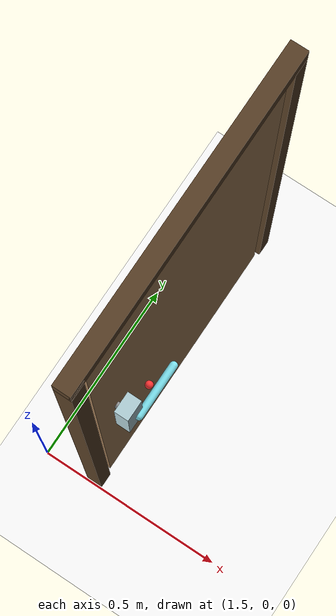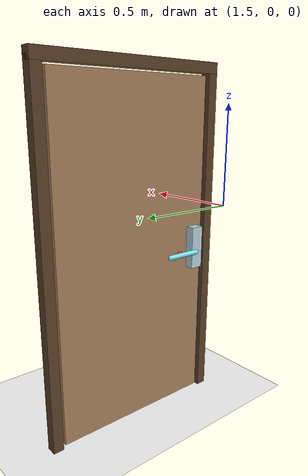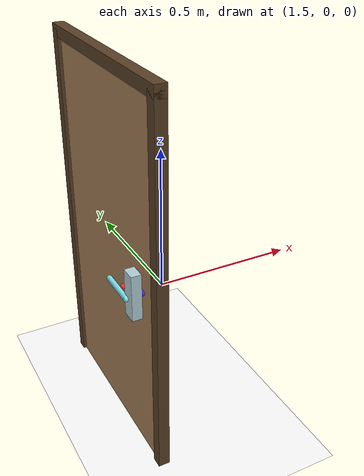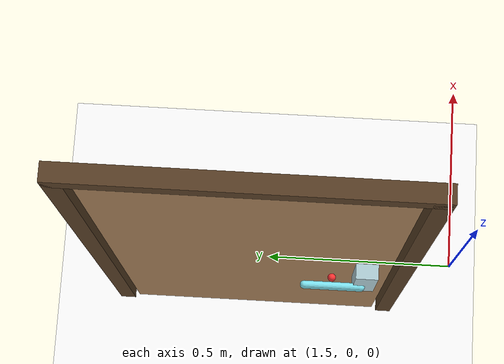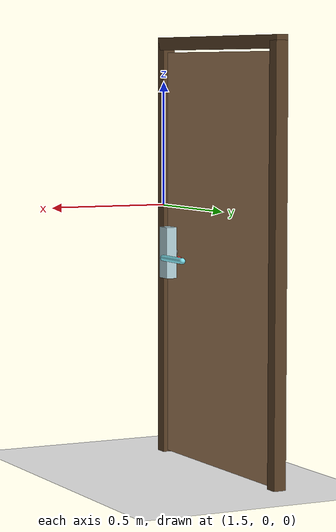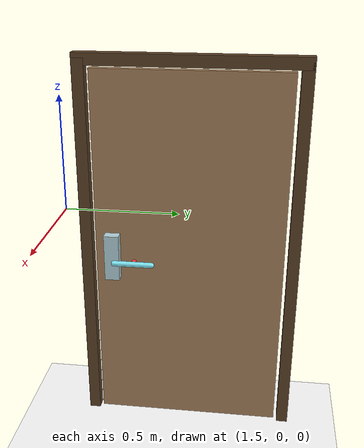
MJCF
<mujoco model="open_door_demo">
  <!-- Robot-less scene. Add the robot as an mjcf layer under env.scene.layers. -->

  <statistic center="0.3 0 0.4" extent="1"/>

  <option timestep="0.005" iterations="5" ls_iterations="8" integrator="implicitfast" noslip_iterations="2">
    <flag eulerdamp="disable"/>
  </option>

  <custom>
    <numeric data="12" name="max_contact_points"/>
  </custom>

  <visual>
    <headlight diffuse=".8 .8 .8" ambient=".2 .2 .2" specular="1 1 1"/>
    <rgba force="1 0 0 1"/>
    <global azimuth="-40" elevation="-30"/>
    <map force="0.01" znear="0.001"/>
    <quality shadowsize="8192"/>
    <scale contactwidth="0.075" contactheight="0.025" forcewidth="0.05" com="0.05" framewidth="0.01" framelength="0.2"/>
  </visual>

  <asset>
    <texture type="skybox" builtin="gradient" rgb1="1 1 1" rgb2="1 1 1" width="800" height="800"/>
    <texture type="2d" name="groundplane" builtin="checker" mark="edge" rgb1="1 1 1" rgb2="1 1 1" markrgb="0 0 0" width="300" height="300"/>
    <material name="groundplane" texture="groundplane" texuniform="true" texrepeat="5 5" reflectance="0"/>
  </asset>

  <worldbody>
    <light name="scene_light" pos="0 0 1.5" dir="0 0 -1" directional="true"/>

    <body name="ground" pos="1 0 -1">
      <geom name="floor" size="0 0 0.05" type="plane" material="groundplane" contype="1"/>
    </body>

    <camera name="env1_cam" pos="0.440 -0.780 0.300" xyaxes="0.672673 -0.739940 0.000000 0.201175 0.182886 0.962331" fovy="30"/>
    <camera name="env0_cam" pos="0.440  1.220 0.300" xyaxes="-0.672673 -0.739940 0.000000 0.201175 -0.182886 0.962331" fovy="30"/>
    <camera name="env2_cam" pos="-0.500  0.5520 1.500" xyaxes="-0.000980 -1.000000 0.000000 0.635707 -0.000623 0.771930" fovy="30"/>

    <body name="door_frame_physics" pos="1.540000000 0.100000000 -1.000000000" quat="0.707106781 0.000000000 0.000000000 0.707106781">
      <geom name="door_frame_physics_left_geom" type="box" pos="0.000000000 0.000000000 0.830000000" size="0.025000000 0.025000000 0.830000000" rgba="0.35 0.25 0.15 1" contype="1" conaffinity="1"/>
      <geom name="door_frame_physics_right_geom" type="box" pos="0.900000000 0.000000000 0.830000000" size="0.025000000 0.025000000 0.830000000" rgba="0.35 0.25 0.15 1" contype="1" conaffinity="1"/>
      <geom name="door_frame_physics_top_geom" type="box" pos="0.450000000 0.000000000 1.655000000" size="0.475000000 0.025000000 0.025000000" rgba="0.35 0.25 0.15 1" contype="1" conaffinity="1"/>

      <body name="door_body_phys" pos="0.840000000 0.000000000 0.000000000">
        <joint name="door_hinge" type="hinge" pos="0 0 0" axis="0 0 1" limited="true" range="-1.57 1.57 " damping="5.0" frictionloss="5.0" armature="0.05"/>
        <inertial pos="-0.420000000 0.000000000 0.815000000" mass="6.0" diaginertia="0.2 0.2 0.2"/>
        <geom name="door_panel_geom" type="box" pos="-0.390000000 0.000000000 0.815000000" size="0.410000000 0.015000000 0.805000000" rgba="0.65 0.50 0.35 1" density="350" contype="1" conaffinity="1" friction="0.8 0.1 0.1"/>
        <site name="door_push_site" pos="-0.729500000 0.022000000 0.825000000" size="0.012" rgba="0.2 0.2 1 1"/>

        <body name="handle_body_phys" pos="-0.719500000 0.000000000 0.825000000">
          <inertial pos="0 0 0" mass="0.05" diaginertia="0.00005 0.00005 0.00005"/>
          <geom name="handle_spindle_geom" type="cylinder" fromto="0 -0.042 0 0 0.042 0" size="0.010" rgba="0.55 0.55 0.55 1" contype="1" conaffinity="1"/>
          <geom name="handle_plate_front_geom" type="box" pos="0 0.054 0" size="0.032 0.022 0.102" rgba="0.70 0.82 0.85 0.95" contype="1" conaffinity="1"/>
          <geom name="handle_plate_back_geom" type="box" pos="0 -0.054 0" size="0.032 0.022 0.102" rgba="0.70 0.82 0.85 0.95" contype="1" conaffinity="1"/>
          <site name="handle_axis_site" pos="0 0 0" size="0.010" rgba="1 1 0 0.8"/>

          <body name="handle_lever_body" pos="0 0 -0.02">
            <inertial pos="0.08 0 0" mass="0.05" diaginertia="0.0001 0.0001 0.0001"/>
            <joint name="handle_hinge" type="hinge" pos="0 0 0" axis="0 1 0" limited="true" range="-0.20 0.80" damping="0.4" frictionloss="0.02" armature="0.0005" springref="0" stiffness="0.5"/>
            <geom name="handle_lever_front_geom" type="capsule" fromto="0.010 0.080 0 0.175 0.080 0" size="0.012" rgba="0.50 0.90 0.95 1" contype="1" conaffinity="1"/>
            <geom name="handle_lever_back_geom" type="capsule" fromto="0.010 -0.080 0 0.175 -0.080 0" size="0.012" rgba="0.50 0.90 0.95 1" contype="1" conaffinity="1"/>
            <!-- front sites: world-aligned (cancels parent door_frame_physics +90° z) -->
            <!-- back sites: mirrored from front via 180° rotation about world z -->
            <site name="handle_tip_front_site" pos="0.175 0.080 0.000" quat="0.707106781 0 0 -0.707106781" size="0.010" rgba="1 0.4 0.2 1"/>
            <site name="handle_tip_back_site" pos="0.175 -0.080 0.000" quat="0.707106781 0 0  0.707106781" size="0.010" rgba="1 0.4 0.2 1"/>
            <site name="handle_grasp_front_site" pos="0.095 0.055 0.000" quat="0.707106781 0 0 -0.707106781" size="0.012" rgba="1 0.2 0.2 1"/>
            <site name="handle_grasp_back_site" pos="0.095 -0.055 0.000" quat="0.707106781 0 0  0.707106781" size="0.012" rgba="1 0.2 0.2 1"/>
            <site name="handle_press_front_site" pos="0.095 0.080 0.000" quat="0.707106781 0 0 -0.707106781" size="0.012" rgba="0.2 1 0.2 1"/>
            <site name="handle_press_back_site" pos="0.095 -0.080 0.000" quat="0.707106781 0 0  0.707106781" size="0.012" rgba="0.2 1 0.2 1"/>

            <!-- GS frame body for handle/knob PLY -->
            <body name="handle_gs_frame" pos="0.270651190 1.64 0.03" quat="0.023543636 -0.014802135 0.716127885 -0.697414831"/>
          </body>

          <!-- GS frame body for lock PLY, fixed outside the rotating lever body. -->
          <body name="lock_gs_frame" pos="0.270651190 1.64 0.01" quat="0.023543636 -0.014802135 0.716127885 -0.697414831"/>
        </body>

        <!-- GS frame body for door PLY -->
        <body name="door_gs_frame" pos="-0.448848810 1.64 0.863" quat="0.023543636 -0.014802135 0.716127885 -0.697414831">
          <body name="door_body" pos="0 0 0"/>
        </body>
      </body>
    </body>
    <!-- GS frame body for background PLY -->
    <body name="bg_gs_frame" pos="-0.105000000 0.491151190 -0.136037800" quat="0.509794620 -0.516845570 0.495912190 -0.476498890"/>
  </worldbody>

  <equality>
    <joint name="door_latch_lock" joint1="door_hinge" polycoef="0 0 0 0 0" active="true" solref="0.002 1" solimp="0.99 0.999 0.001"/>
  </equality>
</mujoco>
